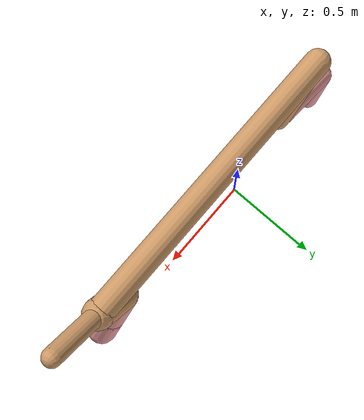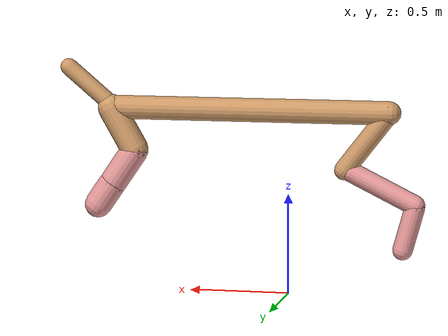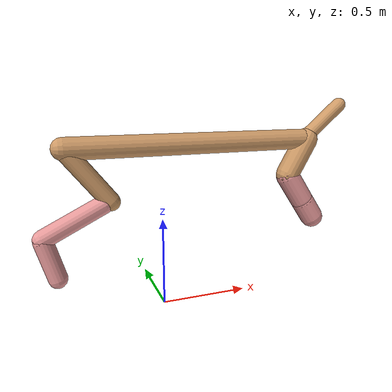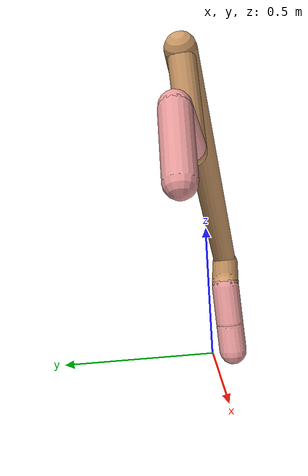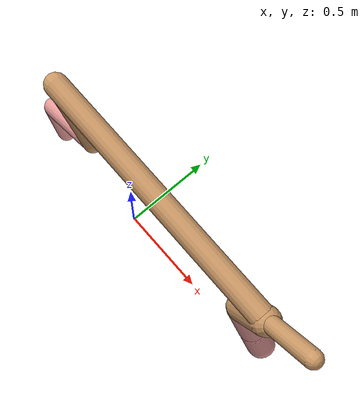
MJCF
<mujoco model="cheetah">
  <compiler angle="radian" coordinate="local" inertiafromgeom="true" settotalmass="14" />
  <default>
    <joint armature=".1" damping=".01" limited="true" solimplimit="0 .8 .03" solreflimit=".02 1" stiffness="8" />
    <geom conaffinity="0" condim="3" contype="1" friction="0.8 .1 .1" rgba="0.8 0.6 .4 1" solimp="0.0 0.8 0.01" solref="0.02 1" />
    <motor ctrllimited="true" ctrlrange="-1 1" />
  </default>
  <size nstack="300000" nuser_geom="1" />
  <option gravity="0 0 -9.81" timestep="0.01" />
  <worldbody>
    <body name="torso" pos="0.0 0.0 0.9160717857899827">
      <joint armature="0" axis="1 0 0" damping="0" limited="false" name="ignorex" pos="0 0 0" stiffness="0" type="slide" />
      <joint armature="0" axis="0 0 1" damping="0" limited="false" name="ignorez" pos="0 0 0" stiffness="0" type="slide" />
      <joint armature="0" axis="0 1 0" damping="0" limited="false" name="ignorey" pos="0 0 0" stiffness="0" type="hinge" />
      <geom fromto="-0.5 0.0 0.0 0.9060254089168052 0.0 0.0" name="torso" size="0.059222996796853195" type="capsule" />
      <geom axisangle="0 1 0 .87" name="head" pos="1.006025408916805 0.0 0.1" size="0.04254432462279858 0.15" type="capsule" />

      <body name="bthigh" pos="-.5 0 0">
        <joint axis="0 1 0" damping="6" name="bthigh" pos="0 0 0" range="-.52 1.05" stiffness="240" type="hinge" />
        <geom axisangle="0 1 0 -3.8" name="bthigh" pos="0.11618854870530806 0.0 -0.1510451133169005" size="0.05021846704612458 0.17155119401656566" type="capsule" />
        <body name="bshin" pos="0.19237709741061612 0.0 -0.29209022663380096">
          <joint axis="0 1 0" damping="4.5" name="bshin" pos="0 0 0" range="-.785 .785" stiffness="180" type="hinge" />
          <geom axisangle="0 1 0 -2.03" name="bshin" pos="-0.16456701022268685 0.0 -0.08228350511134343" rgba="0.9 0.6 0.6 1" size="0.05021846704612458 0.17746675243093" type="capsule" />
          <body name="bfoot" pos="-0.3291340204453737 0.0 -0.16456701022268685">
            <joint axis="0 1 0" damping="3" name="bfoot" pos="0 0 0" range="-.4 .785" stiffness="120" type="hinge" />
            <geom axisangle="0 1 0 -.27" name="bfoot" pos="0.035085772071010504 0.0 -0.11344399636293398" rgba="0.9 0.6 0.6 1" size="0.05021846704612458 0.11121249819004947" type="capsule" />
            <inertial mass="10" />
          </body>
        </body>
      </body>
      <body name="fthigh" pos="0.9060254089168052 0.0 0.0">
        <joint axis="0 1 0" damping="4.5" name="fthigh" pos="0 0 0" range="-1.5 0.8" stiffness="180" type="hinge" />
        <geom axisangle="0 1 0 .52" name="fthigh" pos="-0.06293273670793911 0.0 -0.10788469149932418" size="0.06892145571933732 0.11897406293662136" type="capsule" />
        <body name="fshin" pos="-0.12586547341587823 0.0 -0.21576938299864837">
          <joint axis="0 1 0" damping="3" name="fshin" pos="0 0 0" range="-1.2 1.1" stiffness="120" type="hinge" />
          <geom axisangle="0 1 0 -.6" name="fshin" pos="0.05845505497820369 0.0 -0.08093776843135894" rgba="0.9 0.6 0.6 1" size="0.06892145571933732 0.09482143361866063" type="capsule" />
          <body name="ffoot" pos="0.11691010995640738 0.0 -0.16187553686271788">
            <joint axis="0 1 0" damping="1.5" name="ffoot" pos="0 0 0" range="-3.1 -0.3" stiffness="60" type="hinge" />
            <geom axisangle="0 1 0 -.6" name="ffoot" pos="0.04100808845141717 0.0 -0.06379035981331561" rgba="0.9 0.6 0.6 1" size="0.06892145571933732 0.06261792786137967" type="capsule" />
            <inertial mass="10" />
          </body>
        </body>
      </body>
    </body>
  </worldbody>
  <actuator>
    <motor gear="120" joint="bthigh" name="bthigh" />
    <motor gear="90" joint="bshin" name="bshin" />
    <motor gear="60" joint="bfoot" name="bfoot" />
    <motor gear="120" joint="fthigh" name="fthigh" />
    <motor gear="60" joint="fshin" name="fshin" />
    <motor gear="30" joint="ffoot" name="ffoot" />
  </actuator>
</mujoco>
